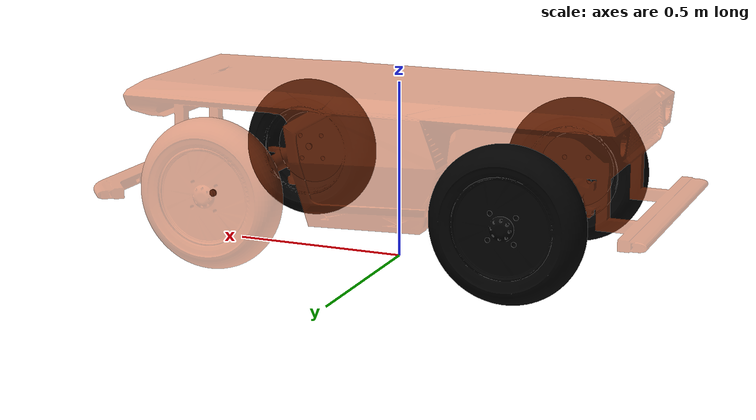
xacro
<?xml version="1.0" encoding="utf-8"?>

<robot name="fr_max" xmlns:xacro="http://www.ros.org/wiki/xacro">

    <xacro:include filename="$(find fr-max)/urdf/macros.xacro" />

    <link name="base_footprint">
    </link>

    <link name="base_link">
        <visual>
            <geometry>
                <mesh filename="package://fr-max/meshes/FR-max-chassis.STL" scale="1 1 1"/>
            </geometry>
            <origin xyz="-0.8 -0.41 -0.051" rpy="0 0 0" />
            <material name="yellow">
                <color rgba="0.8 0.3 0.1 0.5" />
            </material>
        </visual>
        <collision>
            <geometry>
                <box size="1.6 0.82 0.03" />
            </geometry>
            <origin xyz="0.0 0.0 0.0" rpy="0.0 0.0 0.0" />
        </collision>
        <inertial>
            <mass value="136.0"/>
            <inertia
                ixx="10.58"   ixy="0.0"    ixz="0.0"
                iyy="32.31"   iyz="0.0"
                izz="37.36"
            />
        </inertial>

    </link>

    <joint name="base_link2base_footprint" type="fixed">
        <parent link="base_footprint" />
        <child link="base_link"/>
        <origin xyz="0 0 0.032" />
    </joint>

    <link name="left_steering_hinge">
        <visual>
            <geometry>
                <cylinder radius="0.01" length="0.005" />
            </geometry>
            <origin xyz="0 0 0" rpy="1.57 0 0" />
            <material name="black">
                <color rgba="0.0 0.0 0.0 1.0" />
            </material>
        </visual>
        <collision>
            <geometry>
                <cylinder radius="0.02" length="0.005" />
            </geometry>
            <origin xyz="0.0 0.0 0.0" rpy="1.57 0.0 0.0" />
        </collision>
        <inertial>
            <origin xyz="0 0 0" />
            <mass value="2.5" />
            <inertia
                ixx="6.75E-05"
                ixy="0"
                ixz="0"
                iyy="6.75E-05"
                iyz="0"
                izz="1.25E-04"
            />
        </inertial>
    </link>

    <joint name="left_steering_hinge_joint" type="revolute">
        <parent link="base_link" />
        <child link="left_steering_hinge" />
        <origin xyz="0.425 0.3075 0.183" />
        <axis xyz="0 0 1" />
        <limit lower="-0.4363" upper="0.4363" effort="100.0" velocity="100.0"/>
    </joint>

    <link name="left_front_wheel">
        <visual>
            <geometry>
                <mesh filename="package://fr-max/meshes/luntai.STL" scale="1 1 1"/>
            </geometry>
            <origin xyz="0.995 0.05 -0.23" rpy="0 0 3.14" />
            <material name="black">
                <color rgba="0.8 0.3 0.1 0.5" />
            </material>
        </visual>
        <collision>
            <geometry>
                <cylinder radius="0.21" length="0.12" />
            </geometry>
            <origin xyz="0.0 0.0 0.0" rpy="1.57 0.0 0.0" />
        </collision>
        <inertial>
            <origin xyz="0 0 0" />
            <mass value="5.0" />
            <inertia
                ixx="0.0611" ixy="0" ixz="0"
                iyy="0.0611" iyz="0"
                izz="0.1103"
            />
        </inertial>
    </link>

    <joint name="left_front_wheel_joint" type="continuous">
        <parent link="left_steering_hinge" />
        <child link="left_front_wheel" />
        <origin xyz="0 0.025 0" />
        <axis xyz="0 1 0" />
        <limit effort="100" velocity="1000" />
    </joint>

    <link name="right_steering_hinge">
        <visual>
            <geometry>
                 <cylinder radius="0.01" length="0.005" />
            </geometry>
            <origin xyz="0 0 0" rpy="1.57 0 0" />
            <material name="black">
                <color rgba="0.0 0.0 0.0 1.0" />
            </material>
        </visual>
        <collision>
            <geometry>
                <cylinder radius="0.01" length="0.005" />
            </geometry>
            <origin xyz="0.0 0.0 0.0" rpy="1.57 0.0 0.0" />
        </collision>
        <inertial>
            <origin xyz="0 0 0" />
            <mass value="2.5" />
            <inertia
                ixx="6.75E-05"
                ixy="0"
                ixz="0"
                iyy="6.75E-05"
                iyz="0"
                izz="1.25E-04"
            />
        </inertial>
    </link>

    <joint name="right_steering_hinge_joint" type="revolute">
        <parent link="base_link" />
        <child link="right_steering_hinge" />
        <origin xyz="0.425 -0.3075 0.183" />
        <axis xyz="0 0 1" />
        <limit lower="-0.4363" upper="0.4363" effort="100.0" velocity="100.0"/>
    </joint>

    <link name="right_front_wheel">
        <visual>
            <geometry>
                <mesh filename="package://fr-max/meshes/luntai.STL" scale="1 1 1"/>
            </geometry>
            <origin xyz="0.995 -0.05 0.23" rpy="0 3.14 0" />
            <material name="black">
                <color rgba="0.0 0.0 0.0 1.0" />
            </material>
        </visual>
        <collision>
            <geometry>
                <cylinder radius="0.21" length="0.12" />
            </geometry>
            <origin xyz="0.0 0.0 0.0" rpy="1.57 0.0 0.0" />
        </collision>
        <inertial>
            <origin xyz="0 0 0" />  <!-- 质心位于几何中心 -->
            <mass value="5.0" />
            <inertia
                ixx="0.0611" ixy="0" ixz="0"
                iyy="0.0611" iyz="0"
                izz="0.1103"
            />
        </inertial>
    </link>

    <joint name="right_front_wheel_joint" type="continuous">
        <parent link="right_steering_hinge" />
        <child link="right_front_wheel" />
        <origin xyz="0 -0.025 0" />
        <axis xyz="0 1 0" />
        <limit effort="100" velocity="1000" />
    </joint>

    <link name="left_rear_wheel">
        <visual>
            <geometry>
                <mesh filename="package://fr-max/meshes/luntai.STL" scale="1 1 1"/>
            </geometry>
            <origin xyz="0.995 0.05 -0.23" rpy="0 0 3.14" />
            <material name="black">
                <color rgba="0.0 0.0 0.0 1.0" />
            </material>
        </visual>
        <collision>
            <geometry>
                <cylinder radius="0.21" length="0.12" />
            </geometry>
            <origin xyz="0.0 0.0 0.0" rpy="1.57 0.0 0.0" />
        </collision>
        <inertial>
            <origin xyz="0 0 0" />  <!-- 质心位于几何中心 -->
            <mass value="5.0" />
            <inertia
                ixx="0.0611" ixy="0" ixz="0"
                iyy="0.0611" iyz="0"
                izz="0.1103"
            />
        </inertial>
    </link>

    <joint name="left_rear_wheel_joint" type="continuous">
        <parent link="base_link" />
        <child link="left_rear_wheel" />
        <origin xyz="-0.425 0.3325 0.183" />
        <axis xyz="0 1 0" />
        <limit effort="10" velocity="1000" />
    </joint>

    <link name="right_rear_wheel">
        <visual>
            <geometry>
                <mesh filename="package://fr-max/meshes/luntai.STL" scale="1 1 1"/>
            </geometry>
            <origin xyz="-0.995 -0.05 -0.23" rpy="0 0 0" />
            <material name="black">
                <color rgba="0.0 0.0 0.0 1.0" />
            </material>
        </visual>
        <collision>
            <geometry>
                <cylinder radius="0.21" length="0.12" />
            </geometry>
            <origin xyz="0.0 0.0 0.0" rpy="1.57 0.0 0.0" />
        </collision>
        <inertial>
            <origin xyz="0 0 0" />  <!-- 质心位于几何中心 -->
            <mass value="5.0" />
            <inertia
                ixx="0.0611" ixy="0" ixz="0"
                iyy="0.0611" iyz="0"
                izz="0.1103"
            />
        </inertial>
    </link>

    <joint name="right_rear_wheel_joint" type="continuous">
        <parent link="base_link" />
        <child link="right_rear_wheel" />
        <origin xyz="-0.425 -0.3325 0.183" />
        <axis xyz="0 1 0" />
        <limit effort="10" velocity="1000" />
    </joint>

  <xacro:include filename="$(find fr-max)/urdf/fr-max.gazebo" />

</robot>
